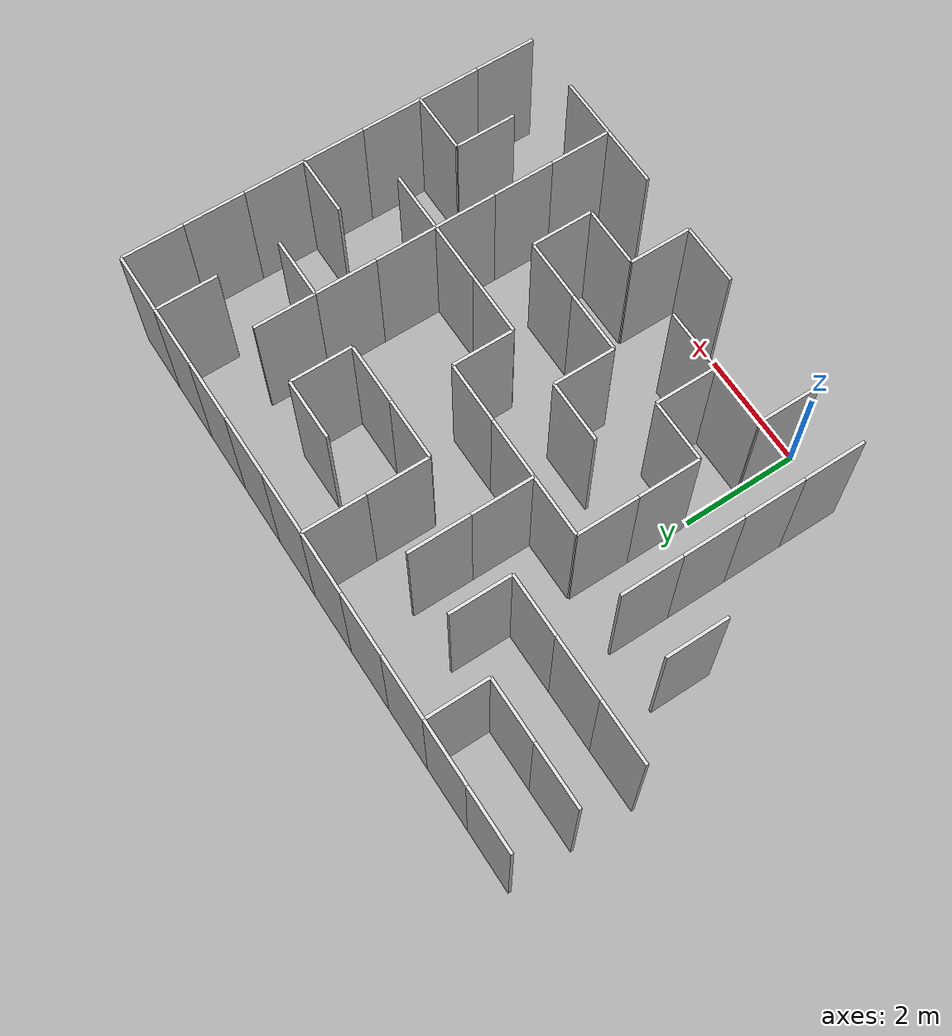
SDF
<sdf version="1.10">
 <world name="nidar_layer1_maze">
  <model name="vwall_06_07">
   <static>true</static>
   <pose>-1.0500 0.5250 1.2500 0 0 0</pose>
   <link name="link">
    <collision name="collision"><geometry><box><size>0.0500 1.0500 2.5000</size></box></geometry></collision>
    <visual name="visual">
     <geometry><box><size>0.0500 1.0500 2.5000</size></box></geometry>
     <material><ambient>0.72 0.72 0.72 1</ambient><diffuse>0.82 0.82 0.82 1</diffuse></material>
    </visual>
   </link>
  </model>
  <model name="vwall_07_07">
   <static>true</static>
   <pose>0.0000 0.5250 1.2500 0 0 0</pose>
   <link name="link">
    <collision name="collision"><geometry><box><size>0.0500 1.0500 2.5000</size></box></geometry></collision>
    <visual name="visual">
     <geometry><box><size>0.0500 1.0500 2.5000</size></box></geometry>
     <material><ambient>0.72 0.72 0.72 1</ambient><diffuse>0.82 0.82 0.82 1</diffuse></material>
    </visual>
   </link>
  </model>
  <model name="vwall_10_07">
   <static>true</static>
   <pose>3.1500 0.5250 1.2500 0 0 0</pose>
   <link name="link">
    <collision name="collision"><geometry><box><size>0.0500 1.0500 2.5000</size></box></geometry></collision>
    <visual name="visual">
     <geometry><box><size>0.0500 1.0500 2.5000</size></box></geometry>
     <material><ambient>0.72 0.72 0.72 1</ambient><diffuse>0.82 0.82 0.82 1</diffuse></material>
    </visual>
   </link>
  </model>
  <model name="vwall_12_07">
   <static>true</static>
   <pose>5.2500 0.5250 1.2500 0 0 0</pose>
   <link name="link">
    <collision name="collision"><geometry><box><size>0.0500 1.0500 2.5000</size></box></geometry></collision>
    <visual name="visual">
     <geometry><box><size>0.0500 1.0500 2.5000</size></box></geometry>
     <material><ambient>0.72 0.72 0.72 1</ambient><diffuse>0.82 0.82 0.82 1</diffuse></material>
    </visual>
   </link>
  </model>
  <model name="vwall_14_07">
   <static>true</static>
   <pose>7.3500 0.5250 1.2500 0 0 0</pose>
   <link name="link">
    <collision name="collision"><geometry><box><size>0.0500 1.0500 2.5000</size></box></geometry></collision>
    <visual name="visual">
     <geometry><box><size>0.0500 1.0500 2.5000</size></box></geometry>
     <material><ambient>0.72 0.72 0.72 1</ambient><diffuse>0.82 0.82 0.82 1</diffuse></material>
    </visual>
   </link>
  </model>
  <model name="vwall_06_08">
   <static>true</static>
   <pose>-1.0500 1.5750 1.2500 0 0 0</pose>
   <link name="link">
    <collision name="collision"><geometry><box><size>0.0500 1.0500 2.5000</size></box></geometry></collision>
    <visual name="visual">
     <geometry><box><size>0.0500 1.0500 2.5000</size></box></geometry>
     <material><ambient>0.72 0.72 0.72 1</ambient><diffuse>0.82 0.82 0.82 1</diffuse></material>
    </visual>
   </link>
  </model>
  <model name="vwall_08_08">
   <static>true</static>
   <pose>1.0500 1.5750 1.2500 0 0 0</pose>
   <link name="link">
    <collision name="collision"><geometry><box><size>0.0500 1.0500 2.5000</size></box></geometry></collision>
    <visual name="visual">
     <geometry><box><size>0.0500 1.0500 2.5000</size></box></geometry>
     <material><ambient>0.72 0.72 0.72 1</ambient><diffuse>0.82 0.82 0.82 1</diffuse></material>
    </visual>
   </link>
  </model>
  <model name="vwall_11_08">
   <static>true</static>
   <pose>4.2000 1.5750 1.2500 0 0 0</pose>
   <link name="link">
    <collision name="collision"><geometry><box><size>0.0500 1.0500 2.5000</size></box></geometry></collision>
    <visual name="visual">
     <geometry><box><size>0.0500 1.0500 2.5000</size></box></geometry>
     <material><ambient>0.72 0.72 0.72 1</ambient><diffuse>0.82 0.82 0.82 1</diffuse></material>
    </visual>
   </link>
  </model>
  <model name="vwall_12_08">
   <static>true</static>
   <pose>5.2500 1.5750 1.2500 0 0 0</pose>
   <link name="link">
    <collision name="collision"><geometry><box><size>0.0500 1.0500 2.5000</size></box></geometry></collision>
    <visual name="visual">
     <geometry><box><size>0.0500 1.0500 2.5000</size></box></geometry>
     <material><ambient>0.72 0.72 0.72 1</ambient><diffuse>0.82 0.82 0.82 1</diffuse></material>
    </visual>
   </link>
  </model>
  <model name="vwall_13_08">
   <static>true</static>
   <pose>6.3000 1.5750 1.2500 0 0 0</pose>
   <link name="link">
    <collision name="collision"><geometry><box><size>0.0500 1.0500 2.5000</size></box></geometry></collision>
    <visual name="visual">
     <geometry><box><size>0.0500 1.0500 2.5000</size></box></geometry>
     <material><ambient>0.72 0.72 0.72 1</ambient><diffuse>0.82 0.82 0.82 1</diffuse></material>
    </visual>
   </link>
  </model>
  <model name="vwall_14_08">
   <static>true</static>
   <pose>7.3500 1.5750 1.2500 0 0 0</pose>
   <link name="link">
    <collision name="collision"><geometry><box><size>0.0500 1.0500 2.5000</size></box></geometry></collision>
    <visual name="visual">
     <geometry><box><size>0.0500 1.0500 2.5000</size></box></geometry>
     <material><ambient>0.72 0.72 0.72 1</ambient><diffuse>0.82 0.82 0.82 1</diffuse></material>
    </visual>
   </link>
  </model>
  <model name="vwall_06_09">
   <static>true</static>
   <pose>-1.0500 2.6250 1.2500 0 0 0</pose>
   <link name="link">
    <collision name="collision"><geometry><box><size>0.0500 1.0500 2.5000</size></box></geometry></collision>
    <visual name="visual">
     <geometry><box><size>0.0500 1.0500 2.5000</size></box></geometry>
     <material><ambient>0.72 0.72 0.72 1</ambient><diffuse>0.82 0.82 0.82 1</diffuse></material>
    </visual>
   </link>
  </model>
  <model name="vwall_07_09">
   <static>true</static>
   <pose>0.0000 2.6250 1.2500 0 0 0</pose>
   <link name="link">
    <collision name="collision"><geometry><box><size>0.0500 1.0500 2.5000</size></box></geometry></collision>
    <visual name="visual">
     <geometry><box><size>0.0500 1.0500 2.5000</size></box></geometry>
     <material><ambient>0.72 0.72 0.72 1</ambient><diffuse>0.82 0.82 0.82 1</diffuse></material>
    </visual>
   </link>
  </model>
  <model name="vwall_09_09">
   <static>true</static>
   <pose>2.1000 2.6250 1.2500 0 0 0</pose>
   <link name="link">
    <collision name="collision"><geometry><box><size>0.0500 1.0500 2.5000</size></box></geometry></collision>
    <visual name="visual">
     <geometry><box><size>0.0500 1.0500 2.5000</size></box></geometry>
     <material><ambient>0.72 0.72 0.72 1</ambient><diffuse>0.82 0.82 0.82 1</diffuse></material>
    </visual>
   </link>
  </model>
  <model name="vwall_12_09">
   <static>true</static>
   <pose>5.2500 2.6250 1.2500 0 0 0</pose>
   <link name="link">
    <collision name="collision"><geometry><box><size>0.0500 1.0500 2.5000</size></box></geometry></collision>
    <visual name="visual">
     <geometry><box><size>0.0500 1.0500 2.5000</size></box></geometry>
     <material><ambient>0.72 0.72 0.72 1</ambient><diffuse>0.82 0.82 0.82 1</diffuse></material>
    </visual>
   </link>
  </model>
  <model name="vwall_14_09">
   <static>true</static>
   <pose>7.3500 2.6250 1.2500 0 0 0</pose>
   <link name="link">
    <collision name="collision"><geometry><box><size>0.0500 1.0500 2.5000</size></box></geometry></collision>
    <visual name="visual">
     <geometry><box><size>0.0500 1.0500 2.5000</size></box></geometry>
     <material><ambient>0.72 0.72 0.72 1</ambient><diffuse>0.82 0.82 0.82 1</diffuse></material>
    </visual>
   </link>
  </model>
  <model name="vwall_05_10">
   <static>true</static>
   <pose>-2.1000 3.6750 1.2500 0 0 0</pose>
   <link name="link">
    <collision name="collision"><geometry><box><size>0.0500 1.0500 2.5000</size></box></geometry></collision>
    <visual name="visual">
     <geometry><box><size>0.0500 1.0500 2.5000</size></box></geometry>
     <material><ambient>0.72 0.72 0.72 1</ambient><diffuse>0.82 0.82 0.82 1</diffuse></material>
    </visual>
   </link>
  </model>
  <model name="vwall_06_10">
   <static>true</static>
   <pose>-1.0500 3.6750 1.2500 0 0 0</pose>
   <link name="link">
    <collision name="collision"><geometry><box><size>0.0500 1.0500 2.5000</size></box></geometry></collision>
    <visual name="visual">
     <geometry><box><size>0.0500 1.0500 2.5000</size></box></geometry>
     <material><ambient>0.72 0.72 0.72 1</ambient><diffuse>0.82 0.82 0.82 1</diffuse></material>
    </visual>
   </link>
  </model>
  <model name="vwall_07_10">
   <static>true</static>
   <pose>0.0000 3.6750 1.2500 0 0 0</pose>
   <link name="link">
    <collision name="collision"><geometry><box><size>0.0500 1.0500 2.5000</size></box></geometry></collision>
    <visual name="visual">
     <geometry><box><size>0.0500 1.0500 2.5000</size></box></geometry>
     <material><ambient>0.72 0.72 0.72 1</ambient><diffuse>0.82 0.82 0.82 1</diffuse></material>
    </visual>
   </link>
  </model>
  <model name="vwall_10_10">
   <static>true</static>
   <pose>3.1500 3.6750 1.2500 0 0 0</pose>
   <link name="link">
    <collision name="collision"><geometry><box><size>0.0500 1.0500 2.5000</size></box></geometry></collision>
    <visual name="visual">
     <geometry><box><size>0.0500 1.0500 2.5000</size></box></geometry>
     <material><ambient>0.72 0.72 0.72 1</ambient><diffuse>0.82 0.82 0.82 1</diffuse></material>
    </visual>
   </link>
  </model>
  <model name="vwall_12_10">
   <static>true</static>
   <pose>5.2500 3.6750 1.2500 0 0 0</pose>
   <link name="link">
    <collision name="collision"><geometry><box><size>0.0500 1.0500 2.5000</size></box></geometry></collision>
    <visual name="visual">
     <geometry><box><size>0.0500 1.0500 2.5000</size></box></geometry>
     <material><ambient>0.72 0.72 0.72 1</ambient><diffuse>0.82 0.82 0.82 1</diffuse></material>
    </visual>
   </link>
  </model>
  <model name="vwall_14_10">
   <static>true</static>
   <pose>7.3500 3.6750 1.2500 0 0 0</pose>
   <link name="link">
    <collision name="collision"><geometry><box><size>0.0500 1.0500 2.5000</size></box></geometry></collision>
    <visual name="visual">
     <geometry><box><size>0.0500 1.0500 2.5000</size></box></geometry>
     <material><ambient>0.72 0.72 0.72 1</ambient><diffuse>0.82 0.82 0.82 1</diffuse></material>
    </visual>
   </link>
  </model>
  <model name="vwall_08_11">
   <static>true</static>
   <pose>1.0500 4.7250 1.2500 0 0 0</pose>
   <link name="link">
    <collision name="collision"><geometry><box><size>0.0500 1.0500 2.5000</size></box></geometry></collision>
    <visual name="visual">
     <geometry><box><size>0.0500 1.0500 2.5000</size></box></geometry>
     <material><ambient>0.72 0.72 0.72 1</ambient><diffuse>0.82 0.82 0.82 1</diffuse></material>
    </visual>
   </link>
  </model>
  <model name="vwall_12_11">
   <static>true</static>
   <pose>5.2500 4.7250 1.2500 0 0 0</pose>
   <link name="link">
    <collision name="collision"><geometry><box><size>0.0500 1.0500 2.5000</size></box></geometry></collision>
    <visual name="visual">
     <geometry><box><size>0.0500 1.0500 2.5000</size></box></geometry>
     <material><ambient>0.72 0.72 0.72 1</ambient><diffuse>0.82 0.82 0.82 1</diffuse></material>
    </visual>
   </link>
  </model>
  <model name="vwall_14_11">
   <static>true</static>
   <pose>7.3500 4.7250 1.2500 0 0 0</pose>
   <link name="link">
    <collision name="collision"><geometry><box><size>0.0500 1.0500 2.5000</size></box></geometry></collision>
    <visual name="visual">
     <geometry><box><size>0.0500 1.0500 2.5000</size></box></geometry>
     <material><ambient>0.72 0.72 0.72 1</ambient><diffuse>0.82 0.82 0.82 1</diffuse></material>
    </visual>
   </link>
  </model>
  <model name="vwall_07_12">
   <static>true</static>
   <pose>0.0000 5.7750 1.2500 0 0 0</pose>
   <link name="link">
    <collision name="collision"><geometry><box><size>0.0500 1.0500 2.5000</size></box></geometry></collision>
    <visual name="visual">
     <geometry><box><size>0.0500 1.0500 2.5000</size></box></geometry>
     <material><ambient>0.72 0.72 0.72 1</ambient><diffuse>0.82 0.82 0.82 1</diffuse></material>
    </visual>
   </link>
  </model>
  <model name="vwall_08_12">
   <static>true</static>
   <pose>1.0500 5.7750 1.2500 0 0 0</pose>
   <link name="link">
    <collision name="collision"><geometry><box><size>0.0500 1.0500 2.5000</size></box></geometry></collision>
    <visual name="visual">
     <geometry><box><size>0.0500 1.0500 2.5000</size></box></geometry>
     <material><ambient>0.72 0.72 0.72 1</ambient><diffuse>0.82 0.82 0.82 1</diffuse></material>
    </visual>
   </link>
  </model>
  <model name="vwall_09_12">
   <static>true</static>
   <pose>2.1000 5.7750 1.2500 0 0 0</pose>
   <link name="link">
    <collision name="collision"><geometry><box><size>0.0500 1.0500 2.5000</size></box></geometry></collision>
    <visual name="visual">
     <geometry><box><size>0.0500 1.0500 2.5000</size></box></geometry>
     <material><ambient>0.72 0.72 0.72 1</ambient><diffuse>0.82 0.82 0.82 1</diffuse></material>
    </visual>
   </link>
  </model>
  <model name="vwall_11_12">
   <static>true</static>
   <pose>4.2000 5.7750 1.2500 0 0 0</pose>
   <link name="link">
    <collision name="collision"><geometry><box><size>0.0500 1.0500 2.5000</size></box></geometry></collision>
    <visual name="visual">
     <geometry><box><size>0.0500 1.0500 2.5000</size></box></geometry>
     <material><ambient>0.72 0.72 0.72 1</ambient><diffuse>0.82 0.82 0.82 1</diffuse></material>
    </visual>
   </link>
  </model>
  <model name="vwall_12_12">
   <static>true</static>
   <pose>5.2500 5.7750 1.2500 0 0 0</pose>
   <link name="link">
    <collision name="collision"><geometry><box><size>0.0500 1.0500 2.5000</size></box></geometry></collision>
    <visual name="visual">
     <geometry><box><size>0.0500 1.0500 2.5000</size></box></geometry>
     <material><ambient>0.72 0.72 0.72 1</ambient><diffuse>0.82 0.82 0.82 1</diffuse></material>
    </visual>
   </link>
  </model>
  <model name="vwall_14_12">
   <static>true</static>
   <pose>7.3500 5.7750 1.2500 0 0 0</pose>
   <link name="link">
    <collision name="collision"><geometry><box><size>0.0500 1.0500 2.5000</size></box></geometry></collision>
    <visual name="visual">
     <geometry><box><size>0.0500 1.0500 2.5000</size></box></geometry>
     <material><ambient>0.72 0.72 0.72 1</ambient><diffuse>0.82 0.82 0.82 1</diffuse></material>
    </visual>
   </link>
  </model>
  <model name="vwall_06_13">
   <static>true</static>
   <pose>-1.0500 6.8250 1.2500 0 0 0</pose>
   <link name="link">
    <collision name="collision"><geometry><box><size>0.0500 1.0500 2.5000</size></box></geometry></collision>
    <visual name="visual">
     <geometry><box><size>0.0500 1.0500 2.5000</size></box></geometry>
     <material><ambient>0.72 0.72 0.72 1</ambient><diffuse>0.82 0.82 0.82 1</diffuse></material>
    </visual>
   </link>
  </model>
  <model name="vwall_09_13">
   <static>true</static>
   <pose>2.1000 6.8250 1.2500 0 0 0</pose>
   <link name="link">
    <collision name="collision"><geometry><box><size>0.0500 1.0500 2.5000</size></box></geometry></collision>
    <visual name="visual">
     <geometry><box><size>0.0500 1.0500 2.5000</size></box></geometry>
     <material><ambient>0.72 0.72 0.72 1</ambient><diffuse>0.82 0.82 0.82 1</diffuse></material>
    </visual>
   </link>
  </model>
  <model name="vwall_13_13">
   <static>true</static>
   <pose>6.3000 6.8250 1.2500 0 0 0</pose>
   <link name="link">
    <collision name="collision"><geometry><box><size>0.0500 1.0500 2.5000</size></box></geometry></collision>
    <visual name="visual">
     <geometry><box><size>0.0500 1.0500 2.5000</size></box></geometry>
     <material><ambient>0.72 0.72 0.72 1</ambient><diffuse>0.82 0.82 0.82 1</diffuse></material>
    </visual>
   </link>
  </model>
  <model name="vwall_14_13">
   <static>true</static>
   <pose>7.3500 6.8250 1.2500 0 0 0</pose>
   <link name="link">
    <collision name="collision"><geometry><box><size>0.0500 1.0500 2.5000</size></box></geometry></collision>
    <visual name="visual">
     <geometry><box><size>0.0500 1.0500 2.5000</size></box></geometry>
     <material><ambient>0.72 0.72 0.72 1</ambient><diffuse>0.82 0.82 0.82 1</diffuse></material>
    </visual>
   </link>
  </model>
  <model name="hwall_09_07">
   <static>true</static>
   <pose>2.6250 0.0000 1.2500 0 0 0</pose>
   <link name="link">
    <collision name="collision"><geometry><box><size>1.0500 0.0500 2.5000</size></box></geometry></collision>
    <visual name="visual">
     <geometry><box><size>1.0500 0.0500 2.5000</size></box></geometry>
     <material><ambient>0.72 0.72 0.72 1</ambient><diffuse>0.82 0.82 0.82 1</diffuse></material>
    </visual>
   </link>
  </model>
  <model name="hwall_11_07">
   <static>true</static>
   <pose>4.7250 0.0000 1.2500 0 0 0</pose>
   <link name="link">
    <collision name="collision"><geometry><box><size>1.0500 0.0500 2.5000</size></box></geometry></collision>
    <visual name="visual">
     <geometry><box><size>1.0500 0.0500 2.5000</size></box></geometry>
     <material><ambient>0.72 0.72 0.72 1</ambient><diffuse>0.82 0.82 0.82 1</diffuse></material>
    </visual>
   </link>
  </model>
  <model name="hwall_12_07">
   <static>true</static>
   <pose>5.7750 0.0000 1.2500 0 0 0</pose>
   <link name="link">
    <collision name="collision"><geometry><box><size>1.0500 0.0500 2.5000</size></box></geometry></collision>
    <visual name="visual">
     <geometry><box><size>1.0500 0.0500 2.5000</size></box></geometry>
     <material><ambient>0.72 0.72 0.72 1</ambient><diffuse>0.82 0.82 0.82 1</diffuse></material>
    </visual>
   </link>
  </model>
  <model name="hwall_07_08">
   <static>true</static>
   <pose>0.5250 1.0500 1.2500 0 0 0</pose>
   <link name="link">
    <collision name="collision"><geometry><box><size>1.0500 0.0500 2.5000</size></box></geometry></collision>
    <visual name="visual">
     <geometry><box><size>1.0500 0.0500 2.5000</size></box></geometry>
     <material><ambient>0.72 0.72 0.72 1</ambient><diffuse>0.82 0.82 0.82 1</diffuse></material>
    </visual>
   </link>
  </model>
  <model name="hwall_08_08">
   <static>true</static>
   <pose>1.5750 1.0500 1.2500 0 0 0</pose>
   <link name="link">
    <collision name="collision"><geometry><box><size>1.0500 0.0500 2.5000</size></box></geometry></collision>
    <visual name="visual">
     <geometry><box><size>1.0500 0.0500 2.5000</size></box></geometry>
     <material><ambient>0.72 0.72 0.72 1</ambient><diffuse>0.82 0.82 0.82 1</diffuse></material>
    </visual>
   </link>
  </model>
  <model name="hwall_10_08">
   <static>true</static>
   <pose>3.6750 1.0500 1.2500 0 0 0</pose>
   <link name="link">
    <collision name="collision"><geometry><box><size>1.0500 0.0500 2.5000</size></box></geometry></collision>
    <visual name="visual">
     <geometry><box><size>1.0500 0.0500 2.5000</size></box></geometry>
     <material><ambient>0.72 0.72 0.72 1</ambient><diffuse>0.82 0.82 0.82 1</diffuse></material>
    </visual>
   </link>
  </model>
  <model name="hwall_07_09">
   <static>true</static>
   <pose>0.5250 2.1000 1.2500 0 0 0</pose>
   <link name="link">
    <collision name="collision"><geometry><box><size>1.0500 0.0500 2.5000</size></box></geometry></collision>
    <visual name="visual">
     <geometry><box><size>1.0500 0.0500 2.5000</size></box></geometry>
     <material><ambient>0.72 0.72 0.72 1</ambient><diffuse>0.82 0.82 0.82 1</diffuse></material>
    </visual>
   </link>
  </model>
  <model name="hwall_09_09">
   <static>true</static>
   <pose>2.6250 2.1000 1.2500 0 0 0</pose>
   <link name="link">
    <collision name="collision"><geometry><box><size>1.0500 0.0500 2.5000</size></box></geometry></collision>
    <visual name="visual">
     <geometry><box><size>1.0500 0.0500 2.5000</size></box></geometry>
     <material><ambient>0.72 0.72 0.72 1</ambient><diffuse>0.82 0.82 0.82 1</diffuse></material>
    </visual>
   </link>
  </model>
  <model name="hwall_10_09">
   <static>true</static>
   <pose>3.6750 2.1000 1.2500 0 0 0</pose>
   <link name="link">
    <collision name="collision"><geometry><box><size>1.0500 0.0500 2.5000</size></box></geometry></collision>
    <visual name="visual">
     <geometry><box><size>1.0500 0.0500 2.5000</size></box></geometry>
     <material><ambient>0.72 0.72 0.72 1</ambient><diffuse>0.82 0.82 0.82 1</diffuse></material>
    </visual>
   </link>
  </model>
  <model name="hwall_13_09">
   <static>true</static>
   <pose>6.8250 2.1000 1.2500 0 0 0</pose>
   <link name="link">
    <collision name="collision"><geometry><box><size>1.0500 0.0500 2.5000</size></box></geometry></collision>
    <visual name="visual">
     <geometry><box><size>1.0500 0.0500 2.5000</size></box></geometry>
     <material><ambient>0.72 0.72 0.72 1</ambient><diffuse>0.82 0.82 0.82 1</diffuse></material>
    </visual>
   </link>
  </model>
  <model name="hwall_08_10">
   <static>true</static>
   <pose>1.5750 3.1500 1.2500 0 0 0</pose>
   <link name="link">
    <collision name="collision"><geometry><box><size>1.0500 0.0500 2.5000</size></box></geometry></collision>
    <visual name="visual">
     <geometry><box><size>1.0500 0.0500 2.5000</size></box></geometry>
     <material><ambient>0.72 0.72 0.72 1</ambient><diffuse>0.82 0.82 0.82 1</diffuse></material>
    </visual>
   </link>
  </model>
  <model name="hwall_10_10">
   <static>true</static>
   <pose>3.6750 3.1500 1.2500 0 0 0</pose>
   <link name="link">
    <collision name="collision"><geometry><box><size>1.0500 0.0500 2.5000</size></box></geometry></collision>
    <visual name="visual">
     <geometry><box><size>1.0500 0.0500 2.5000</size></box></geometry>
     <material><ambient>0.72 0.72 0.72 1</ambient><diffuse>0.82 0.82 0.82 1</diffuse></material>
    </visual>
   </link>
  </model>
  <model name="hwall_11_10">
   <static>true</static>
   <pose>4.7250 3.1500 1.2500 0 0 0</pose>
   <link name="link">
    <collision name="collision"><geometry><box><size>1.0500 0.0500 2.5000</size></box></geometry></collision>
    <visual name="visual">
     <geometry><box><size>1.0500 0.0500 2.5000</size></box></geometry>
     <material><ambient>0.72 0.72 0.72 1</ambient><diffuse>0.82 0.82 0.82 1</diffuse></material>
    </visual>
   </link>
  </model>
  <model name="hwall_12_10">
   <static>true</static>
   <pose>5.7750 3.1500 1.2500 0 0 0</pose>
   <link name="link">
    <collision name="collision"><geometry><box><size>1.0500 0.0500 2.5000</size></box></geometry></collision>
    <visual name="visual">
     <geometry><box><size>1.0500 0.0500 2.5000</size></box></geometry>
     <material><ambient>0.72 0.72 0.72 1</ambient><diffuse>0.82 0.82 0.82 1</diffuse></material>
    </visual>
   </link>
  </model>
  <model name="hwall_07_11">
   <static>true</static>
   <pose>0.5250 4.2000 1.2500 0 0 0</pose>
   <link name="link">
    <collision name="collision"><geometry><box><size>1.0500 0.0500 2.5000</size></box></geometry></collision>
    <visual name="visual">
     <geometry><box><size>1.0500 0.0500 2.5000</size></box></geometry>
     <material><ambient>0.72 0.72 0.72 1</ambient><diffuse>0.82 0.82 0.82 1</diffuse></material>
    </visual>
   </link>
  </model>
  <model name="hwall_08_11">
   <static>true</static>
   <pose>1.5750 4.2000 1.2500 0 0 0</pose>
   <link name="link">
    <collision name="collision"><geometry><box><size>1.0500 0.0500 2.5000</size></box></geometry></collision>
    <visual name="visual">
     <geometry><box><size>1.0500 0.0500 2.5000</size></box></geometry>
     <material><ambient>0.72 0.72 0.72 1</ambient><diffuse>0.82 0.82 0.82 1</diffuse></material>
    </visual>
   </link>
  </model>
  <model name="hwall_09_11">
   <static>true</static>
   <pose>2.6250 4.2000 1.2500 0 0 0</pose>
   <link name="link">
    <collision name="collision"><geometry><box><size>1.0500 0.0500 2.5000</size></box></geometry></collision>
    <visual name="visual">
     <geometry><box><size>1.0500 0.0500 2.5000</size></box></geometry>
     <material><ambient>0.72 0.72 0.72 1</ambient><diffuse>0.82 0.82 0.82 1</diffuse></material>
    </visual>
   </link>
  </model>
  <model name="hwall_13_11">
   <static>true</static>
   <pose>6.8250 4.2000 1.2500 0 0 0</pose>
   <link name="link">
    <collision name="collision"><geometry><box><size>1.0500 0.0500 2.5000</size></box></geometry></collision>
    <visual name="visual">
     <geometry><box><size>1.0500 0.0500 2.5000</size></box></geometry>
     <material><ambient>0.72 0.72 0.72 1</ambient><diffuse>0.82 0.82 0.82 1</diffuse></material>
    </visual>
   </link>
  </model>
  <model name="hwall_04_12">
   <static>true</static>
   <pose>-2.6250 5.2500 1.2500 0 0 0</pose>
   <link name="link">
    <collision name="collision"><geometry><box><size>1.0500 0.0500 2.5000</size></box></geometry></collision>
    <visual name="visual">
     <geometry><box><size>1.0500 0.0500 2.5000</size></box></geometry>
     <material><ambient>0.72 0.72 0.72 1</ambient><diffuse>0.82 0.82 0.82 1</diffuse></material>
    </visual>
   </link>
  </model>
  <model name="hwall_05_12">
   <static>true</static>
   <pose>-1.5750 5.2500 1.2500 0 0 0</pose>
   <link name="link">
    <collision name="collision"><geometry><box><size>1.0500 0.0500 2.5000</size></box></geometry></collision>
    <visual name="visual">
     <geometry><box><size>1.0500 0.0500 2.5000</size></box></geometry>
     <material><ambient>0.72 0.72 0.72 1</ambient><diffuse>0.82 0.82 0.82 1</diffuse></material>
    </visual>
   </link>
  </model>
  <model name="hwall_06_12">
   <static>true</static>
   <pose>-0.5250 5.2500 1.2500 0 0 0</pose>
   <link name="link">
    <collision name="collision"><geometry><box><size>1.0500 0.0500 2.5000</size></box></geometry></collision>
    <visual name="visual">
     <geometry><box><size>1.0500 0.0500 2.5000</size></box></geometry>
     <material><ambient>0.72 0.72 0.72 1</ambient><diffuse>0.82 0.82 0.82 1</diffuse></material>
    </visual>
   </link>
  </model>
  <model name="hwall_09_12">
   <static>true</static>
   <pose>2.6250 5.2500 1.2500 0 0 0</pose>
   <link name="link">
    <collision name="collision"><geometry><box><size>1.0500 0.0500 2.5000</size></box></geometry></collision>
    <visual name="visual">
     <geometry><box><size>1.0500 0.0500 2.5000</size></box></geometry>
     <material><ambient>0.72 0.72 0.72 1</ambient><diffuse>0.82 0.82 0.82 1</diffuse></material>
    </visual>
   </link>
  </model>
  <model name="hwall_10_12">
   <static>true</static>
   <pose>3.6750 5.2500 1.2500 0 0 0</pose>
   <link name="link">
    <collision name="collision"><geometry><box><size>1.0500 0.0500 2.5000</size></box></geometry></collision>
    <visual name="visual">
     <geometry><box><size>1.0500 0.0500 2.5000</size></box></geometry>
     <material><ambient>0.72 0.72 0.72 1</ambient><diffuse>0.82 0.82 0.82 1</diffuse></material>
    </visual>
   </link>
  </model>
  <model name="hwall_12_12">
   <static>true</static>
   <pose>5.7750 5.2500 1.2500 0 0 0</pose>
   <link name="link">
    <collision name="collision"><geometry><box><size>1.0500 0.0500 2.5000</size></box></geometry></collision>
    <visual name="visual">
     <geometry><box><size>1.0500 0.0500 2.5000</size></box></geometry>
     <material><ambient>0.72 0.72 0.72 1</ambient><diffuse>0.82 0.82 0.82 1</diffuse></material>
    </visual>
   </link>
  </model>
  <model name="hwall_04_13">
   <static>true</static>
   <pose>-2.6250 6.3000 1.2500 0 0 0</pose>
   <link name="link">
    <collision name="collision"><geometry><box><size>1.0500 0.0500 2.5000</size></box></geometry></collision>
    <visual name="visual">
     <geometry><box><size>1.0500 0.0500 2.5000</size></box></geometry>
     <material><ambient>0.72 0.72 0.72 1</ambient><diffuse>0.82 0.82 0.82 1</diffuse></material>
    </visual>
   </link>
  </model>
  <model name="hwall_05_13">
   <static>true</static>
   <pose>-1.5750 6.3000 1.2500 0 0 0</pose>
   <link name="link">
    <collision name="collision"><geometry><box><size>1.0500 0.0500 2.5000</size></box></geometry></collision>
    <visual name="visual">
     <geometry><box><size>1.0500 0.0500 2.5000</size></box></geometry>
     <material><ambient>0.72 0.72 0.72 1</ambient><diffuse>0.82 0.82 0.82 1</diffuse></material>
    </visual>
   </link>
  </model>
  <model name="hwall_10_13">
   <static>true</static>
   <pose>3.6750 6.3000 1.2500 0 0 0</pose>
   <link name="link">
    <collision name="collision"><geometry><box><size>1.0500 0.0500 2.5000</size></box></geometry></collision>
    <visual name="visual">
     <geometry><box><size>1.0500 0.0500 2.5000</size></box></geometry>
     <material><ambient>0.72 0.72 0.72 1</ambient><diffuse>0.82 0.82 0.82 1</diffuse></material>
    </visual>
   </link>
  </model>
  <model name="hwall_04_14">
   <static>true</static>
   <pose>-2.6250 7.3500 1.2500 0 0 0</pose>
   <link name="link">
    <collision name="collision"><geometry><box><size>1.0500 0.0500 2.5000</size></box></geometry></collision>
    <visual name="visual">
     <geometry><box><size>1.0500 0.0500 2.5000</size></box></geometry>
     <material><ambient>0.72 0.72 0.72 1</ambient><diffuse>0.82 0.82 0.82 1</diffuse></material>
    </visual>
   </link>
  </model>
  <model name="hwall_05_14">
   <static>true</static>
   <pose>-1.5750 7.3500 1.2500 0 0 0</pose>
   <link name="link">
    <collision name="collision"><geometry><box><size>1.0500 0.0500 2.5000</size></box></geometry></collision>
    <visual name="visual">
     <geometry><box><size>1.0500 0.0500 2.5000</size></box></geometry>
     <material><ambient>0.72 0.72 0.72 1</ambient><diffuse>0.82 0.82 0.82 1</diffuse></material>
    </visual>
   </link>
  </model>
  <model name="hwall_06_14">
   <static>true</static>
   <pose>-0.5250 7.3500 1.2500 0 0 0</pose>
   <link name="link">
    <collision name="collision"><geometry><box><size>1.0500 0.0500 2.5000</size></box></geometry></collision>
    <visual name="visual">
     <geometry><box><size>1.0500 0.0500 2.5000</size></box></geometry>
     <material><ambient>0.72 0.72 0.72 1</ambient><diffuse>0.82 0.82 0.82 1</diffuse></material>
    </visual>
   </link>
  </model>
  <model name="hwall_07_14">
   <static>true</static>
   <pose>0.5250 7.3500 1.2500 0 0 0</pose>
   <link name="link">
    <collision name="collision"><geometry><box><size>1.0500 0.0500 2.5000</size></box></geometry></collision>
    <visual name="visual">
     <geometry><box><size>1.0500 0.0500 2.5000</size></box></geometry>
     <material><ambient>0.72 0.72 0.72 1</ambient><diffuse>0.82 0.82 0.82 1</diffuse></material>
    </visual>
   </link>
  </model>
  <model name="hwall_08_14">
   <static>true</static>
   <pose>1.5750 7.3500 1.2500 0 0 0</pose>
   <link name="link">
    <collision name="collision"><geometry><box><size>1.0500 0.0500 2.5000</size></box></geometry></collision>
    <visual name="visual">
     <geometry><box><size>1.0500 0.0500 2.5000</size></box></geometry>
     <material><ambient>0.72 0.72 0.72 1</ambient><diffuse>0.82 0.82 0.82 1</diffuse></material>
    </visual>
   </link>
  </model>
  <model name="hwall_09_14">
   <static>true</static>
   <pose>2.6250 7.3500 1.2500 0 0 0</pose>
   <link name="link">
    <collision name="collision"><geometry><box><size>1.0500 0.0500 2.5000</size></box></geometry></collision>
    <visual name="visual">
     <geometry><box><size>1.0500 0.0500 2.5000</size></box></geometry>
     <material><ambient>0.72 0.72 0.72 1</ambient><diffuse>0.82 0.82 0.82 1</diffuse></material>
    </visual>
   </link>
  </model>
  <model name="hwall_10_14">
   <static>true</static>
   <pose>3.6750 7.3500 1.2500 0 0 0</pose>
   <link name="link">
    <collision name="collision"><geometry><box><size>1.0500 0.0500 2.5000</size></box></geometry></collision>
    <visual name="visual">
     <geometry><box><size>1.0500 0.0500 2.5000</size></box></geometry>
     <material><ambient>0.72 0.72 0.72 1</ambient><diffuse>0.82 0.82 0.82 1</diffuse></material>
    </visual>
   </link>
  </model>
  <model name="hwall_11_14">
   <static>true</static>
   <pose>4.7250 7.3500 1.2500 0 0 0</pose>
   <link name="link">
    <collision name="collision"><geometry><box><size>1.0500 0.0500 2.5000</size></box></geometry></collision>
    <visual name="visual">
     <geometry><box><size>1.0500 0.0500 2.5000</size></box></geometry>
     <material><ambient>0.72 0.72 0.72 1</ambient><diffuse>0.82 0.82 0.82 1</diffuse></material>
    </visual>
   </link>
  </model>
  <model name="hwall_12_14">
   <static>true</static>
   <pose>5.7750 7.3500 1.2500 0 0 0</pose>
   <link name="link">
    <collision name="collision"><geometry><box><size>1.0500 0.0500 2.5000</size></box></geometry></collision>
    <visual name="visual">
     <geometry><box><size>1.0500 0.0500 2.5000</size></box></geometry>
     <material><ambient>0.72 0.72 0.72 1</ambient><diffuse>0.82 0.82 0.82 1</diffuse></material>
    </visual>
   </link>
  </model>
  <model name="hwall_13_14">
   <static>true</static>
   <pose>6.8250 7.3500 1.2500 0 0 0</pose>
   <link name="link">
    <collision name="collision"><geometry><box><size>1.0500 0.0500 2.5000</size></box></geometry></collision>
    <visual name="visual">
     <geometry><box><size>1.0500 0.0500 2.5000</size></box></geometry>
     <material><ambient>0.72 0.72 0.72 1</ambient><diffuse>0.82 0.82 0.82 1</diffuse></material>
    </visual>
   </link>
  </model>
 </world>
</sdf>
